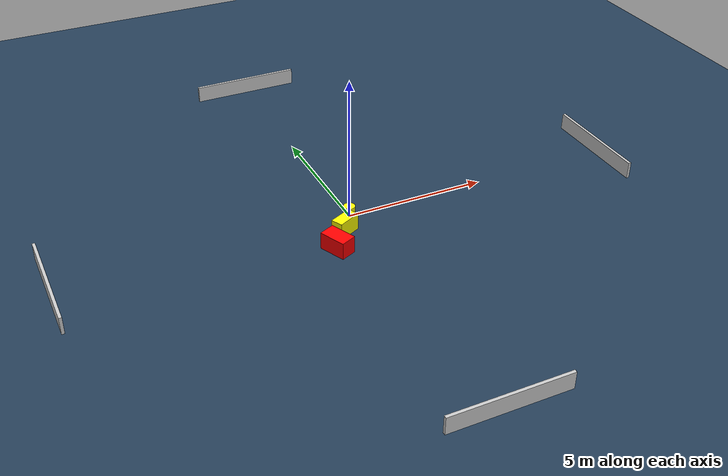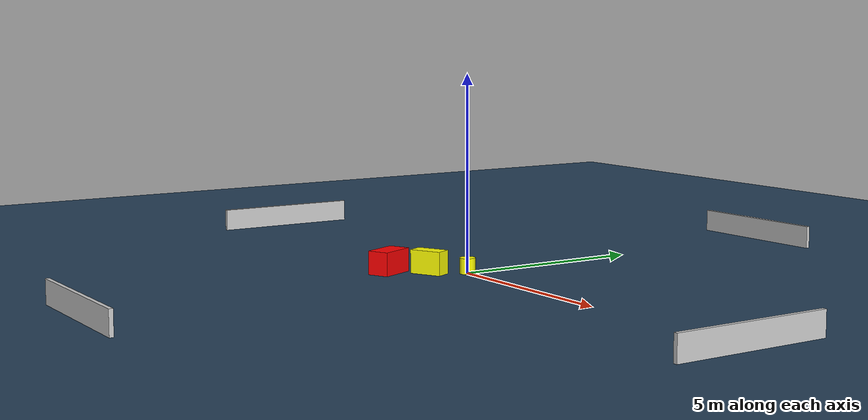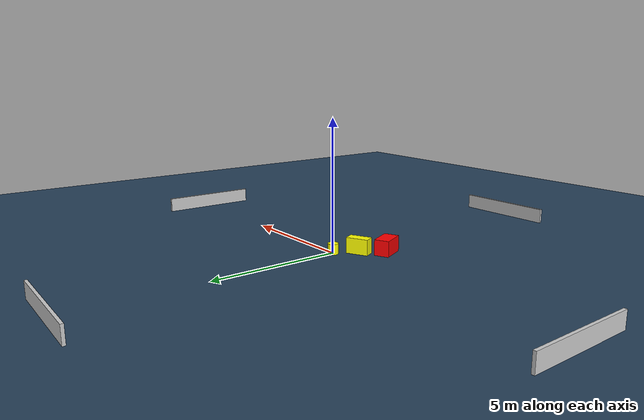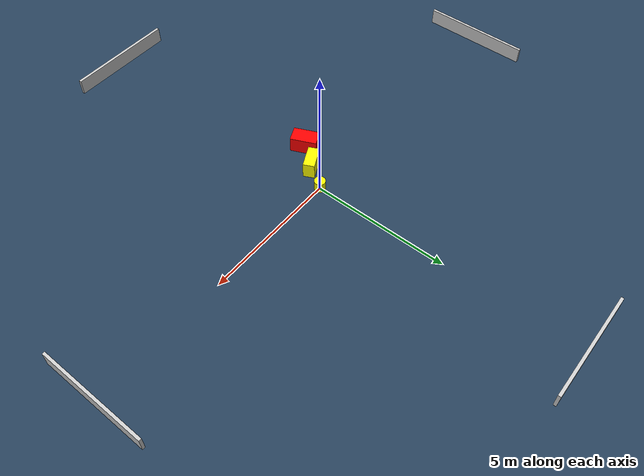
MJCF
<?xml version="1.0" ?>
<mujoco model="generated_environment">
  <option timestep="0.01" integrator="RK4" cone="elliptic"/>
  <default>
    <geom density="1"/>
  </default>
  <asset>
    <texture builtin="gradient" height="3072" name="skybox" rgb1="0.3 0.5 0.7" rgb2="0 0 0" type="skybox" width="512"/>
    <texture builtin="checker" height="300" name="groundplane" rgb1="0.2 0.3 0.4" rgb2="0.1 0.2 0.3" type="2d" width="300"/>
    <material name="groundplane" reflectance="0.2" texrepeat="5 5" texture="groundplane"/>
  </asset>
  <worldbody>
    <light dir="0 0 -1" directional="true" pos="0 0 1.5"/>
    <geom condim="3" friction="0.5 0.005 0.001" material="groundplane" name="floor" pos="0 0 0" size="0 0 0.05" type="plane"/>
    <body name="walls">
      <geom name="wall_1" condim="4" pos="-10.0 0.0 0.3" rgba="0.800000011920929 0.800000011920929 0.800000011920929 1.0" size="0.05 2.0 0.3" type="box"/>
      <geom name="wall_2" condim="4" pos="10.0 0.0 0.3" rgba="0.800000011920929 0.800000011920929 0.800000011920929 1.0" size="0.05 2.0 0.3" type="box"/>
      <geom name="wall_3" condim="4" pos="0.0 -10.0 0.3" rgba="0.800000011920929 0.800000011920929 0.800000011920929 1.0" size="2.0 0.05 0.3" type="box"/>
      <geom name="wall_4" condim="4" pos="0.0 10.0 0.3" rgba="0.800000011920929 0.800000011920929 0.800000011920929 1.0" size="2.0 0.05 0.3" type="box"/>
    </body>
    <body name="robot">
      <joint name="joint_x" type="slide" pos="0 0 0" axis="1 0 0"/>
      <joint name="joint_y" type="slide" pos="0 0 0" axis="0 1 0"/>
      <geom name="robot" type="cylinder" pos="0.0 0.0 0.2" size="0.2 0.2 0.0" mass="5.0" friction="1.0 0.005 0.0001" condim="4" rgba="1.0 1.0 0.0 1.0"/>
    </body>
    <body name="obstacle_1_movable">
      <geom name="obstacle_1_movable" condim="4" pos="-0.5290611835456267 -0.8030514587903285 0.3" euler="0 0 295.7378580876079" friction="0.0 0.005 0.001" rgba="1.0 1.0 0.0 1.0" size="0.2054989913324572 0.4236046501646445 0.3" type="box" mass="0.1"/>
      <joint type="free"/>
    </body>
    <body name="obstacle_2_static">
      <geom name="obstacle_2_static" condim="4" pos="-1.1567042741603155 -1.6080935626071764 0.3" euler="0 0 294.2852779402332" friction="0.0 0.005 0.001" rgba="1.0 0.0 0.0 1.0" size="0.47490500967675314 0.28246386682742447 0.3" type="box"/>
    </body>
  </worldbody>
  <actuator>
    <motor name="actuator_x" joint="joint_x" gear="1" ctrlrange="-1 1"/>
    <motor name="actuator_y" joint="joint_y" gear="1" ctrlrange="-1 1"/>
  </actuator>
</mujoco>
